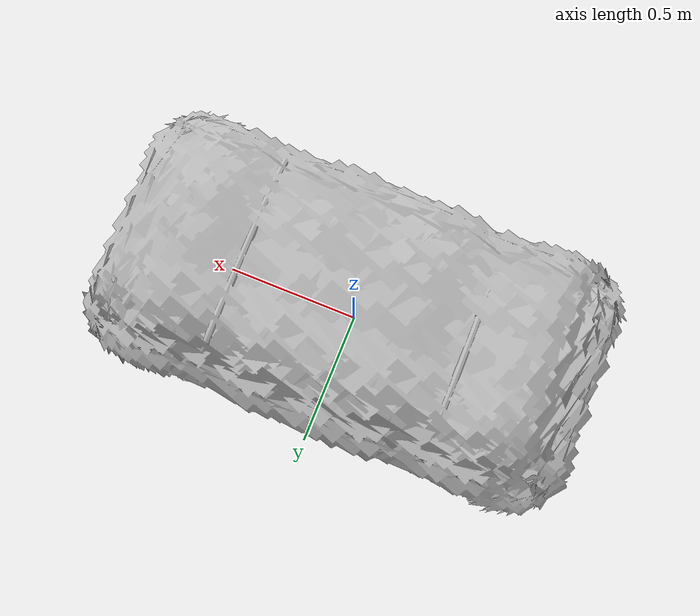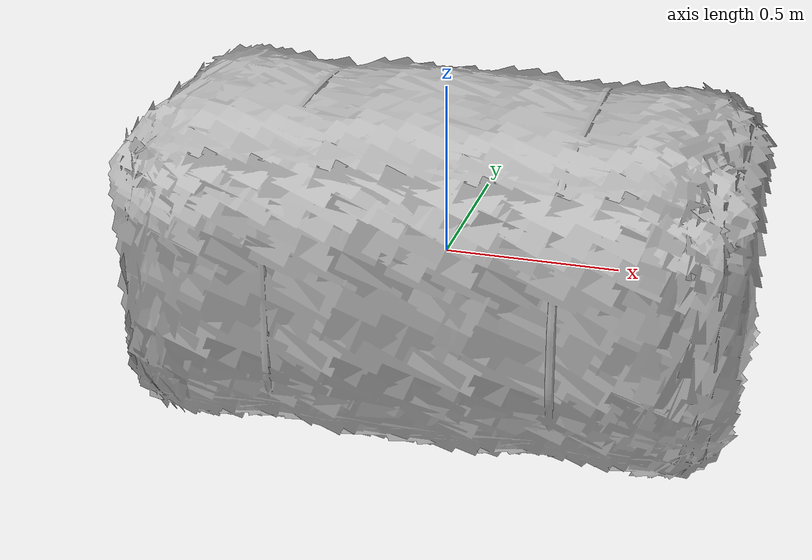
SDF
<?xml version='1.0'?>
<sdf version="1.6">
  <model name="hay_bale">
    <link name='link'>
      <pose>0 0 0 0 0 0</pose>
      <gravity>1</gravity>
      <self_collide>0</self_collide>
      <kinematic>0</kinematic>
      <enable_wind>0</enable_wind>
      <visual name='visual'>
        <pose>0 0 0 0 0 0</pose>
        <geometry>
          <mesh>
            <uri>model://hay_bale/meshes/hay_bale.obj</uri>
          </mesh>
        </geometry>
        <transparency>0</transparency>
        <cast_shadows>1</cast_shadows>
      </visual>
      <collision name='collision'>
        <laser_retro>0</laser_retro>
        <max_contacts>10</max_contacts>
        <pose>0 0 0 0 0 0</pose>
        <geometry>
          <box>
            <size>1.7 0.9 0.9</size>
          </box>
        </geometry>
      </collision>
    </link>
    <static>1</static>
    <allow_auto_disable>1</allow_auto_disable>
  </model>
</sdf>
